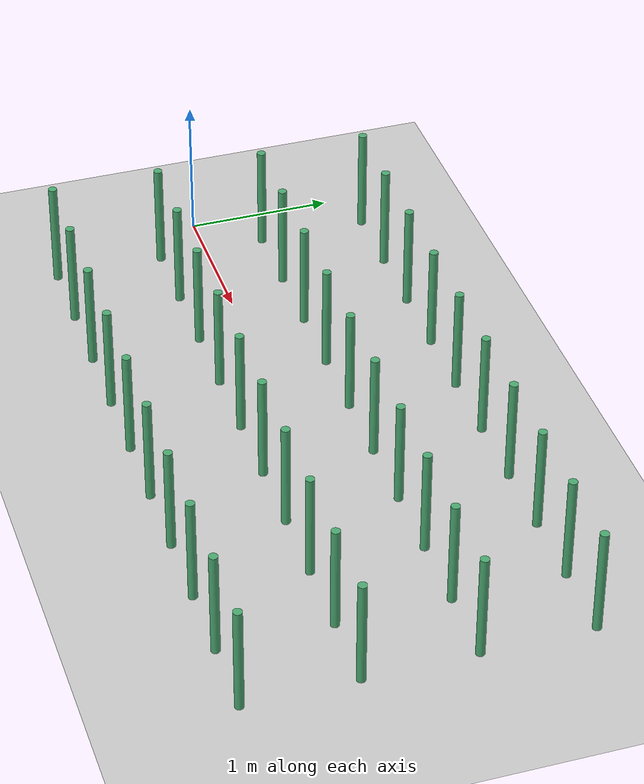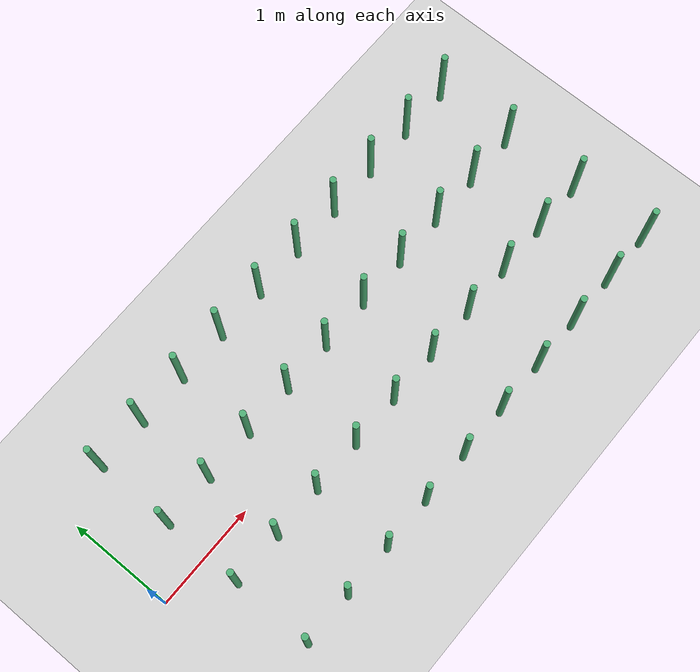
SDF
<sdf version="1.6">
 <world name="default">
  <model name="ground_plane">
   <static>1</static>
   <link name="link">
    <collision name="collision">
     <geometry><plane><normal>0 0 1</normal><size>100 100</size></plane></geometry>
     <surface>
      <contact><collide_bitmask>65535</collide_bitmask></contact>
      <friction><ode><mu>100</mu><mu2>50</mu2></ode></friction>
     </surface>
    </collision>
    <visual name="visual">
     <cast_shadows>0</cast_shadows>
     <geometry><plane><normal>0 0 1</normal><size>100 100</size></plane></geometry>
     <material>
      <script><uri>file://media/materials/scripts/gazebo.material</uri><name>Gazebo/Grey</name></script>
     </material>
    </visual>
   </link>
  </model>
  <model name="cylinder_0000">
   <pose>0.5 0.375 0.5 0 -0 0</pose>
   <link name="cylinder_0000_link">
    <inertial>
     <mass>5.0</mass>
     <inertia>
      <ixx>0.23550000000000001</ixx>
      <ixy>0</ixy>
      <ixz>0</ixz>
      <iyy>0.23550000000000001</iyy>
      <iyz>0</iyz>
      <izz>0.00225</izz>
     </inertia>
    </inertial>
    <collision name="collision">
     <geometry><cylinder><radius>0.03</radius><length>0.75</length></cylinder></geometry>
    </collision>
    <visual name="visual">
     <geometry><cylinder><radius>0.03</radius><length>0.75</length></cylinder></geometry>
     <material>
      <ambient>0.437790 0.985028 0.656685 1.0</ambient>
      <diffuse>0.297093 0.668460 0.445640 1.0</diffuse>
      <specular>0.000000 0.000000 0.000000 1.0</specular>
      <emissive>0.0 0.0 0.0 0.0</emissive>
     </material>
    </visual>
   </link>
  </model>
  <model name="cylinder_0001">
   <pose>0.5 1.125 0.5 0 -0 0</pose>
   <link name="cylinder_0001_link">
    <inertial>
     <mass>5.0</mass>
     <inertia>
      <ixx>0.23550000000000001</ixx>
      <ixy>0</ixy>
      <ixz>0</ixz>
      <iyy>0.23550000000000001</iyy>
      <iyz>0</iyz>
      <izz>0.00225</izz>
     </inertia>
    </inertial>
    <collision name="collision">
     <geometry><cylinder><radius>0.03</radius><length>0.75</length></cylinder></geometry>
    </collision>
    <visual name="visual">
     <geometry><cylinder><radius>0.03</radius><length>0.75</length></cylinder></geometry>
     <material>
      <ambient>0.437790 0.985028 0.656685 1.0</ambient>
      <diffuse>0.297093 0.668460 0.445640 1.0</diffuse>
      <specular>0.000000 0.000000 0.000000 1.0</specular>
      <emissive>0.0 0.0 0.0 0.0</emissive>
     </material>
    </visual>
   </link>
  </model>
  <model name="cylinder_0002">
   <pose>0.5 -0.375 0.5 0 -0 0</pose>
   <link name="cylinder_0002_link">
    <inertial>
     <mass>5.0</mass>
     <inertia>
      <ixx>0.23550000000000001</ixx>
      <ixy>0</ixy>
      <ixz>0</ixz>
      <iyy>0.23550000000000001</iyy>
      <iyz>0</iyz>
      <izz>0.00225</izz>
     </inertia>
    </inertial>
    <collision name="collision">
     <geometry><cylinder><radius>0.03</radius><length>0.75</length></cylinder></geometry>
    </collision>
    <visual name="visual">
     <geometry><cylinder><radius>0.03</radius><length>0.75</length></cylinder></geometry>
     <material>
      <ambient>0.437790 0.985028 0.656685 1.0</ambient>
      <diffuse>0.297093 0.668460 0.445640 1.0</diffuse>
      <specular>0.000000 0.000000 0.000000 1.0</specular>
      <emissive>0.0 0.0 0.0 0.0</emissive>
     </material>
    </visual>
   </link>
  </model>
  <model name="cylinder_0003">
   <pose>0.5 -1.125 0.5 0 -0 0</pose>
   <link name="cylinder_0003_link">
    <inertial>
     <mass>5.0</mass>
     <inertia>
      <ixx>0.23550000000000001</ixx>
      <ixy>0</ixy>
      <ixz>0</ixz>
      <iyy>0.23550000000000001</iyy>
      <iyz>0</iyz>
      <izz>0.00225</izz>
     </inertia>
    </inertial>
    <collision name="collision">
     <geometry><cylinder><radius>0.03</radius><length>0.75</length></cylinder></geometry>
    </collision>
    <visual name="visual">
     <geometry><cylinder><radius>0.03</radius><length>0.75</length></cylinder></geometry>
     <material>
      <ambient>0.437790 0.985028 0.656685 1.0</ambient>
      <diffuse>0.297093 0.668460 0.445640 1.0</diffuse>
      <specular>0.000000 0.000000 0.000000 1.0</specular>
      <emissive>0.0 0.0 0.0 0.0</emissive>
     </material>
    </visual>
   </link>
  </model>
  <model name="cylinder_0004">
   <pose>1.0 0.375 0.5 0 -0 0</pose>
   <link name="cylinder_0004_link">
    <inertial>
     <mass>5.0</mass>
     <inertia>
      <ixx>0.23550000000000001</ixx>
      <ixy>0</ixy>
      <ixz>0</ixz>
      <iyy>0.23550000000000001</iyy>
      <iyz>0</iyz>
      <izz>0.00225</izz>
     </inertia>
    </inertial>
    <collision name="collision">
     <geometry><cylinder><radius>0.03</radius><length>0.75</length></cylinder></geometry>
    </collision>
    <visual name="visual">
     <geometry><cylinder><radius>0.03</radius><length>0.75</length></cylinder></geometry>
     <material>
      <ambient>0.437790 0.985028 0.656685 1.0</ambient>
      <diffuse>0.297093 0.668460 0.445640 1.0</diffuse>
      <specular>0.000000 0.000000 0.000000 1.0</specular>
      <emissive>0.0 0.0 0.0 0.0</emissive>
     </material>
    </visual>
   </link>
  </model>
  <model name="cylinder_0005">
   <pose>1.0 1.125 0.5 0 -0 0</pose>
   <link name="cylinder_0005_link">
    <inertial>
     <mass>5.0</mass>
     <inertia>
      <ixx>0.23550000000000001</ixx>
      <ixy>0</ixy>
      <ixz>0</ixz>
      <iyy>0.23550000000000001</iyy>
      <iyz>0</iyz>
      <izz>0.00225</izz>
     </inertia>
    </inertial>
    <collision name="collision">
     <geometry><cylinder><radius>0.03</radius><length>0.75</length></cylinder></geometry>
    </collision>
    <visual name="visual">
     <geometry><cylinder><radius>0.03</radius><length>0.75</length></cylinder></geometry>
     <material>
      <ambient>0.437790 0.985028 0.656685 1.0</ambient>
      <diffuse>0.297093 0.668460 0.445640 1.0</diffuse>
      <specular>0.000000 0.000000 0.000000 1.0</specular>
      <emissive>0.0 0.0 0.0 0.0</emissive>
     </material>
    </visual>
   </link>
  </model>
  <model name="cylinder_0006">
   <pose>1.0 -0.375 0.5 0 -0 0</pose>
   <link name="cylinder_0006_link">
    <inertial>
     <mass>5.0</mass>
     <inertia>
      <ixx>0.23550000000000001</ixx>
      <ixy>0</ixy>
      <ixz>0</ixz>
      <iyy>0.23550000000000001</iyy>
      <iyz>0</iyz>
      <izz>0.00225</izz>
     </inertia>
    </inertial>
    <collision name="collision">
     <geometry><cylinder><radius>0.03</radius><length>0.75</length></cylinder></geometry>
    </collision>
    <visual name="visual">
     <geometry><cylinder><radius>0.03</radius><length>0.75</length></cylinder></geometry>
     <material>
      <ambient>0.437790 0.985028 0.656685 1.0</ambient>
      <diffuse>0.297093 0.668460 0.445640 1.0</diffuse>
      <specular>0.000000 0.000000 0.000000 1.0</specular>
      <emissive>0.0 0.0 0.0 0.0</emissive>
     </material>
    </visual>
   </link>
  </model>
  <model name="cylinder_0007">
   <pose>1.0 -1.125 0.5 0 -0 0</pose>
   <link name="cylinder_0007_link">
    <inertial>
     <mass>5.0</mass>
     <inertia>
      <ixx>0.23550000000000001</ixx>
      <ixy>0</ixy>
      <ixz>0</ixz>
      <iyy>0.23550000000000001</iyy>
      <iyz>0</iyz>
      <izz>0.00225</izz>
     </inertia>
    </inertial>
    <collision name="collision">
     <geometry><cylinder><radius>0.03</radius><length>0.75</length></cylinder></geometry>
    </collision>
    <visual name="visual">
     <geometry><cylinder><radius>0.03</radius><length>0.75</length></cylinder></geometry>
     <material>
      <ambient>0.437790 0.985028 0.656685 1.0</ambient>
      <diffuse>0.297093 0.668460 0.445640 1.0</diffuse>
      <specular>0.000000 0.000000 0.000000 1.0</specular>
      <emissive>0.0 0.0 0.0 0.0</emissive>
     </material>
    </visual>
   </link>
  </model>
  <model name="cylinder_0008">
   <pose>1.5 0.375 0.5 0 -0 0</pose>
   <link name="cylinder_0008_link">
    <inertial>
     <mass>5.0</mass>
     <inertia>
      <ixx>0.23550000000000001</ixx>
      <ixy>0</ixy>
      <ixz>0</ixz>
      <iyy>0.23550000000000001</iyy>
      <iyz>0</iyz>
      <izz>0.00225</izz>
     </inertia>
    </inertial>
    <collision name="collision">
     <geometry><cylinder><radius>0.03</radius><length>0.75</length></cylinder></geometry>
    </collision>
    <visual name="visual">
     <geometry><cylinder><radius>0.03</radius><length>0.75</length></cylinder></geometry>
     <material>
      <ambient>0.437790 0.985028 0.656685 1.0</ambient>
      <diffuse>0.297093 0.668460 0.445640 1.0</diffuse>
      <specular>0.000000 0.000000 0.000000 1.0</specular>
      <emissive>0.0 0.0 0.0 0.0</emissive>
     </material>
    </visual>
   </link>
  </model>
  <model name="cylinder_0009">
   <pose>1.5 1.125 0.5 0 -0 0</pose>
   <link name="cylinder_0009_link">
    <inertial>
     <mass>5.0</mass>
     <inertia>
      <ixx>0.23550000000000001</ixx>
      <ixy>0</ixy>
      <ixz>0</ixz>
      <iyy>0.23550000000000001</iyy>
      <iyz>0</iyz>
      <izz>0.00225</izz>
     </inertia>
    </inertial>
    <collision name="collision">
     <geometry><cylinder><radius>0.03</radius><length>0.75</length></cylinder></geometry>
    </collision>
    <visual name="visual">
     <geometry><cylinder><radius>0.03</radius><length>0.75</length></cylinder></geometry>
     <material>
      <ambient>0.437790 0.985028 0.656685 1.0</ambient>
      <diffuse>0.297093 0.668460 0.445640 1.0</diffuse>
      <specular>0.000000 0.000000 0.000000 1.0</specular>
      <emissive>0.0 0.0 0.0 0.0</emissive>
     </material>
    </visual>
   </link>
  </model>
  <model name="cylinder_0010">
   <pose>1.5 -0.375 0.5 0 -0 0</pose>
   <link name="cylinder_0010_link">
    <inertial>
     <mass>5.0</mass>
     <inertia>
      <ixx>0.23550000000000001</ixx>
      <ixy>0</ixy>
      <ixz>0</ixz>
      <iyy>0.23550000000000001</iyy>
      <iyz>0</iyz>
      <izz>0.00225</izz>
     </inertia>
    </inertial>
    <collision name="collision">
     <geometry><cylinder><radius>0.03</radius><length>0.75</length></cylinder></geometry>
    </collision>
    <visual name="visual">
     <geometry><cylinder><radius>0.03</radius><length>0.75</length></cylinder></geometry>
     <material>
      <ambient>0.437790 0.985028 0.656685 1.0</ambient>
      <diffuse>0.297093 0.668460 0.445640 1.0</diffuse>
      <specular>0.000000 0.000000 0.000000 1.0</specular>
      <emissive>0.0 0.0 0.0 0.0</emissive>
     </material>
    </visual>
   </link>
  </model>
  <model name="cylinder_0011">
   <pose>1.5 -1.125 0.5 0 -0 0</pose>
   <link name="cylinder_0011_link">
    <inertial>
     <mass>5.0</mass>
     <inertia>
      <ixx>0.23550000000000001</ixx>
      <ixy>0</ixy>
      <ixz>0</ixz>
      <iyy>0.23550000000000001</iyy>
      <iyz>0</iyz>
      <izz>0.00225</izz>
     </inertia>
    </inertial>
    <collision name="collision">
     <geometry><cylinder><radius>0.03</radius><length>0.75</length></cylinder></geometry>
    </collision>
    <visual name="visual">
     <geometry><cylinder><radius>0.03</radius><length>0.75</length></cylinder></geometry>
     <material>
      <ambient>0.437790 0.985028 0.656685 1.0</ambient>
      <diffuse>0.297093 0.668460 0.445640 1.0</diffuse>
      <specular>0.000000 0.000000 0.000000 1.0</specular>
      <emissive>0.0 0.0 0.0 0.0</emissive>
     </material>
    </visual>
   </link>
  </model>
  <model name="cylinder_0012">
   <pose>2.0 0.375 0.5 0 -0 0</pose>
   <link name="cylinder_0012_link">
    <inertial>
     <mass>5.0</mass>
     <inertia>
      <ixx>0.23550000000000001</ixx>
      <ixy>0</ixy>
      <ixz>0</ixz>
      <iyy>0.23550000000000001</iyy>
      <iyz>0</iyz>
      <izz>0.00225</izz>
     </inertia>
    </inertial>
    <collision name="collision">
     <geometry><cylinder><radius>0.03</radius><length>0.75</length></cylinder></geometry>
    </collision>
    <visual name="visual">
     <geometry><cylinder><radius>0.03</radius><length>0.75</length></cylinder></geometry>
     <material>
      <ambient>0.437790 0.985028 0.656685 1.0</ambient>
      <diffuse>0.297093 0.668460 0.445640 1.0</diffuse>
      <specular>0.000000 0.000000 0.000000 1.0</specular>
      <emissive>0.0 0.0 0.0 0.0</emissive>
     </material>
    </visual>
   </link>
  </model>
  <model name="cylinder_0013">
   <pose>2.0 1.125 0.5 0 -0 0</pose>
   <link name="cylinder_0013_link">
    <inertial>
     <mass>5.0</mass>
     <inertia>
      <ixx>0.23550000000000001</ixx>
      <ixy>0</ixy>
      <ixz>0</ixz>
      <iyy>0.23550000000000001</iyy>
      <iyz>0</iyz>
      <izz>0.00225</izz>
     </inertia>
    </inertial>
    <collision name="collision">
     <geometry><cylinder><radius>0.03</radius><length>0.75</length></cylinder></geometry>
    </collision>
    <visual name="visual">
     <geometry><cylinder><radius>0.03</radius><length>0.75</length></cylinder></geometry>
     <material>
      <ambient>0.437790 0.985028 0.656685 1.0</ambient>
      <diffuse>0.297093 0.668460 0.445640 1.0</diffuse>
      <specular>0.000000 0.000000 0.000000 1.0</specular>
      <emissive>0.0 0.0 0.0 0.0</emissive>
     </material>
    </visual>
   </link>
  </model>
  <model name="cylinder_0014">
   <pose>2.0 -0.375 0.5 0 -0 0</pose>
   <link name="cylinder_0014_link">
    <inertial>
     <mass>5.0</mass>
     <inertia>
      <ixx>0.23550000000000001</ixx>
      <ixy>0</ixy>
      <ixz>0</ixz>
      <iyy>0.23550000000000001</iyy>
      <iyz>0</iyz>
      <izz>0.00225</izz>
     </inertia>
    </inertial>
    <collision name="collision">
     <geometry><cylinder><radius>0.03</radius><length>0.75</length></cylinder></geometry>
    </collision>
    <visual name="visual">
     <geometry><cylinder><radius>0.03</radius><length>0.75</length></cylinder></geometry>
     <material>
      <ambient>0.437790 0.985028 0.656685 1.0</ambient>
      <diffuse>0.297093 0.668460 0.445640 1.0</diffuse>
      <specular>0.000000 0.000000 0.000000 1.0</specular>
      <emissive>0.0 0.0 0.0 0.0</emissive>
     </material>
    </visual>
   </link>
  </model>
  <model name="cylinder_0015">
   <pose>2.0 -1.125 0.5 0 -0 0</pose>
   <link name="cylinder_0015_link">
    <inertial>
     <mass>5.0</mass>
     <inertia>
      <ixx>0.23550000000000001</ixx>
      <ixy>0</ixy>
      <ixz>0</ixz>
      <iyy>0.23550000000000001</iyy>
      <iyz>0</iyz>
      <izz>0.00225</izz>
     </inertia>
    </inertial>
    <collision name="collision">
     <geometry><cylinder><radius>0.03</radius><length>0.75</length></cylinder></geometry>
    </collision>
    <visual name="visual">
     <geometry><cylinder><radius>0.03</radius><length>0.75</length></cylinder></geometry>
     <material>
      <ambient>0.437790 0.985028 0.656685 1.0</ambient>
      <diffuse>0.297093 0.668460 0.445640 1.0</diffuse>
      <specular>0.000000 0.000000 0.000000 1.0</specular>
      <emissive>0.0 0.0 0.0 0.0</emissive>
     </material>
    </visual>
   </link>
  </model>
  <model name="cylinder_0016">
   <pose>2.5 0.375 0.5 0 -0 0</pose>
   <link name="cylinder_0016_link">
    <inertial>
     <mass>5.0</mass>
     <inertia>
      <ixx>0.23550000000000001</ixx>
      <ixy>0</ixy>
      <ixz>0</ixz>
      <iyy>0.23550000000000001</iyy>
      <iyz>0</iyz>
      <izz>0.00225</izz>
     </inertia>
    </inertial>
    <collision name="collision">
     <geometry><cylinder><radius>0.03</radius><length>0.75</length></cylinder></geometry>
    </collision>
    <visual name="visual">
     <geometry><cylinder><radius>0.03</radius><length>0.75</length></cylinder></geometry>
     <material>
      <ambient>0.437790 0.985028 0.656685 1.0</ambient>
      <diffuse>0.297093 0.668460 0.445640 1.0</diffuse>
      <specular>0.000000 0.000000 0.000000 1.0</specular>
      <emissive>0.0 0.0 0.0 0.0</emissive>
     </material>
    </visual>
   </link>
  </model>
  <model name="cylinder_0017">
   <pose>2.5 1.125 0.5 0 -0 0</pose>
   <link name="cylinder_0017_link">
    <inertial>
     <mass>5.0</mass>
     <inertia>
      <ixx>0.23550000000000001</ixx>
      <ixy>0</ixy>
      <ixz>0</ixz>
      <iyy>0.23550000000000001</iyy>
      <iyz>0</iyz>
      <izz>0.00225</izz>
     </inertia>
    </inertial>
    <collision name="collision">
     <geometry><cylinder><radius>0.03</radius><length>0.75</length></cylinder></geometry>
    </collision>
    <visual name="visual">
     <geometry><cylinder><radius>0.03</radius><length>0.75</length></cylinder></geometry>
     <material>
      <ambient>0.437790 0.985028 0.656685 1.0</ambient>
      <diffuse>0.297093 0.668460 0.445640 1.0</diffuse>
      <specular>0.000000 0.000000 0.000000 1.0</specular>
      <emissive>0.0 0.0 0.0 0.0</emissive>
     </material>
    </visual>
   </link>
  </model>
  <model name="cylinder_0018">
   <pose>2.5 -0.375 0.5 0 -0 0</pose>
   <link name="cylinder_0018_link">
    <inertial>
     <mass>5.0</mass>
     <inertia>
      <ixx>0.23550000000000001</ixx>
      <ixy>0</ixy>
      <ixz>0</ixz>
      <iyy>0.23550000000000001</iyy>
      <iyz>0</iyz>
      <izz>0.00225</izz>
     </inertia>
    </inertial>
    <collision name="collision">
     <geometry><cylinder><radius>0.03</radius><length>0.75</length></cylinder></geometry>
    </collision>
    <visual name="visual">
     <geometry><cylinder><radius>0.03</radius><length>0.75</length></cylinder></geometry>
     <material>
      <ambient>0.437790 0.985028 0.656685 1.0</ambient>
      <diffuse>0.297093 0.668460 0.445640 1.0</diffuse>
      <specular>0.000000 0.000000 0.000000 1.0</specular>
      <emissive>0.0 0.0 0.0 0.0</emissive>
     </material>
    </visual>
   </link>
  </model>
  <model name="cylinder_0019">
   <pose>2.5 -1.125 0.5 0 -0 0</pose>
   <link name="cylinder_0019_link">
    <inertial>
     <mass>5.0</mass>
     <inertia>
      <ixx>0.23550000000000001</ixx>
      <ixy>0</ixy>
      <ixz>0</ixz>
      <iyy>0.23550000000000001</iyy>
      <iyz>0</iyz>
      <izz>0.00225</izz>
     </inertia>
    </inertial>
    <collision name="collision">
     <geometry><cylinder><radius>0.03</radius><length>0.75</length></cylinder></geometry>
    </collision>
    <visual name="visual">
     <geometry><cylinder><radius>0.03</radius><length>0.75</length></cylinder></geometry>
     <material>
      <ambient>0.437790 0.985028 0.656685 1.0</ambient>
      <diffuse>0.297093 0.668460 0.445640 1.0</diffuse>
      <specular>0.000000 0.000000 0.000000 1.0</specular>
      <emissive>0.0 0.0 0.0 0.0</emissive>
     </material>
    </visual>
   </link>
  </model>
  <model name="cylinder_0020">
   <pose>3.0 0.375 0.5 0 -0 0</pose>
   <link name="cylinder_0020_link">
    <inertial>
     <mass>5.0</mass>
     <inertia>
      <ixx>0.23550000000000001</ixx>
      <ixy>0</ixy>
      <ixz>0</ixz>
      <iyy>0.23550000000000001</iyy>
      <iyz>0</iyz>
      <izz>0.00225</izz>
     </inertia>
    </inertial>
    <collision name="collision">
     <geometry><cylinder><radius>0.03</radius><length>0.75</length></cylinder></geometry>
    </collision>
    <visual name="visual">
     <geometry><cylinder><radius>0.03</radius><length>0.75</length></cylinder></geometry>
     <material>
      <ambient>0.437790 0.985028 0.656685 1.0</ambient>
      <diffuse>0.297093 0.668460 0.445640 1.0</diffuse>
      <specular>0.000000 0.000000 0.000000 1.0</specular>
      <emissive>0.0 0.0 0.0 0.0</emissive>
     </material>
    </visual>
   </link>
  </model>
  <model name="cylinder_0021">
   <pose>3.0 1.125 0.5 0 -0 0</pose>
   <link name="cylinder_0021_link">
    <inertial>
     <mass>5.0</mass>
     <inertia>
      <ixx>0.23550000000000001</ixx>
      <ixy>0</ixy>
      <ixz>0</ixz>
      <iyy>0.23550000000000001</iyy>
      <iyz>0</iyz>
      <izz>0.00225</izz>
     </inertia>
    </inertial>
    <collision name="collision">
     <geometry><cylinder><radius>0.03</radius><length>0.75</length></cylinder></geometry>
    </collision>
    <visual name="visual">
     <geometry><cylinder><radius>0.03</radius><length>0.75</length></cylinder></geometry>
     <material>
      <ambient>0.437790 0.985028 0.656685 1.0</ambient>
      <diffuse>0.297093 0.668460 0.445640 1.0</diffuse>
      <specular>0.000000 0.000000 0.000000 1.0</specular>
      <emissive>0.0 0.0 0.0 0.0</emissive>
     </material>
    </visual>
   </link>
  </model>
  <model name="cylinder_0022">
   <pose>3.0 -0.375 0.5 0 -0 0</pose>
   <link name="cylinder_0022_link">
    <inertial>
     <mass>5.0</mass>
     <inertia>
      <ixx>0.23550000000000001</ixx>
      <ixy>0</ixy>
      <ixz>0</ixz>
      <iyy>0.23550000000000001</iyy>
      <iyz>0</iyz>
      <izz>0.00225</izz>
     </inertia>
    </inertial>
    <collision name="collision">
     <geometry><cylinder><radius>0.03</radius><length>0.75</length></cylinder></geometry>
    </collision>
    <visual name="visual">
     <geometry><cylinder><radius>0.03</radius><length>0.75</length></cylinder></geometry>
     <material>
      <ambient>0.437790 0.985028 0.656685 1.0</ambient>
      <diffuse>0.297093 0.668460 0.445640 1.0</diffuse>
      <specular>0.000000 0.000000 0.000000 1.0</specular>
      <emissive>0.0 0.0 0.0 0.0</emissive>
     </material>
    </visual>
   </link>
  </model>
  <model name="cylinder_0023">
   <pose>3.0 -1.125 0.5 0 -0 0</pose>
   <link name="cylinder_0023_link">
    <inertial>
     <mass>5.0</mass>
     <inertia>
      <ixx>0.23550000000000001</ixx>
      <ixy>0</ixy>
      <ixz>0</ixz>
      <iyy>0.23550000000000001</iyy>
      <iyz>0</iyz>
      <izz>0.00225</izz>
     </inertia>
    </inertial>
    <collision name="collision">
     <geometry><cylinder><radius>0.03</radius><length>0.75</length></cylinder></geometry>
    </collision>
    <visual name="visual">
     <geometry><cylinder><radius>0.03</radius><length>0.75</length></cylinder></geometry>
     <material>
      <ambient>0.437790 0.985028 0.656685 1.0</ambient>
      <diffuse>0.297093 0.668460 0.445640 1.0</diffuse>
      <specular>0.000000 0.000000 0.000000 1.0</specular>
      <emissive>0.0 0.0 0.0 0.0</emissive>
     </material>
    </visual>
   </link>
  </model>
  <model name="cylinder_0024">
   <pose>3.5 0.375 0.5 0 -0 0</pose>
   <link name="cylinder_0024_link">
    <inertial>
     <mass>5.0</mass>
     <inertia>
      <ixx>0.23550000000000001</ixx>
      <ixy>0</ixy>
      <ixz>0</ixz>
      <iyy>0.23550000000000001</iyy>
      <iyz>0</iyz>
      <izz>0.00225</izz>
     </inertia>
    </inertial>
    <collision name="collision">
     <geometry><cylinder><radius>0.03</radius><length>0.75</length></cylinder></geometry>
    </collision>
    <visual name="visual">
     <geometry><cylinder><radius>0.03</radius><length>0.75</length></cylinder></geometry>
     <material>
      <ambient>0.437790 0.985028 0.656685 1.0</ambient>
      <diffuse>0.297093 0.668460 0.445640 1.0</diffuse>
      <specular>0.000000 0.000000 0.000000 1.0</specular>
      <emissive>0.0 0.0 0.0 0.0</emissive>
     </material>
    </visual>
   </link>
  </model>
  <model name="cylinder_0025">
   <pose>3.5 1.125 0.5 0 -0 0</pose>
   <link name="cylinder_0025_link">
    <inertial>
     <mass>5.0</mass>
     <inertia>
      <ixx>0.23550000000000001</ixx>
      <ixy>0</ixy>
      <ixz>0</ixz>
      <iyy>0.23550000000000001</iyy>
      <iyz>0</iyz>
      <izz>0.00225</izz>
     </inertia>
    </inertial>
    <collision name="collision">
     <geometry><cylinder><radius>0.03</radius><length>0.75</length></cylinder></geometry>
    </collision>
    <visual name="visual">
     <geometry><cylinder><radius>0.03</radius><length>0.75</length></cylinder></geometry>
     <material>
      <ambient>0.437790 0.985028 0.656685 1.0</ambient>
      <diffuse>0.297093 0.668460 0.445640 1.0</diffuse>
      <specular>0.000000 0.000000 0.000000 1.0</specular>
      <emissive>0.0 0.0 0.0 0.0</emissive>
     </material>
    </visual>
   </link>
  </model>
  <model name="cylinder_0026">
   <pose>3.5 -0.375 0.5 0 -0 0</pose>
   <link name="cylinder_0026_link">
    <inertial>
     <mass>5.0</mass>
     <inertia>
      <ixx>0.23550000000000001</ixx>
      <ixy>0</ixy>
      <ixz>0</ixz>
      <iyy>0.23550000000000001</iyy>
      <iyz>0</iyz>
      <izz>0.00225</izz>
     </inertia>
    </inertial>
    <collision name="collision">
     <geometry><cylinder><radius>0.03</radius><length>0.75</length></cylinder></geometry>
    </collision>
    <visual name="visual">
     <geometry><cylinder><radius>0.03</radius><length>0.75</length></cylinder></geometry>
     <material>
      <ambient>0.437790 0.985028 0.656685 1.0</ambient>
      <diffuse>0.297093 0.668460 0.445640 1.0</diffuse>
      <specular>0.000000 0.000000 0.000000 1.0</specular>
      <emissive>0.0 0.0 0.0 0.0</emissive>
     </material>
    </visual>
   </link>
  </model>
  <model name="cylinder_0027">
   <pose>3.5 -1.125 0.5 0 -0 0</pose>
   <link name="cylinder_0027_link">
    <inertial>
     <mass>5.0</mass>
     <inertia>
      <ixx>0.23550000000000001</ixx>
      <ixy>0</ixy>
      <ixz>0</ixz>
      <iyy>0.23550000000000001</iyy>
      <iyz>0</iyz>
      <izz>0.00225</izz>
     </inertia>
    </inertial>
    <collision name="collision">
     <geometry><cylinder><radius>0.03</radius><length>0.75</length></cylinder></geometry>
    </collision>
    <visual name="visual">
     <geometry><cylinder><radius>0.03</radius><length>0.75</length></cylinder></geometry>
     <material>
      <ambient>0.437790 0.985028 0.656685 1.0</ambient>
      <diffuse>0.297093 0.668460 0.445640 1.0</diffuse>
      <specular>0.000000 0.000000 0.000000 1.0</specular>
      <emissive>0.0 0.0 0.0 0.0</emissive>
     </material>
    </visual>
   </link>
  </model>
  <model name="cylinder_0028">
   <pose>4.0 0.375 0.5 0 -0 0</pose>
   <link name="cylinder_0028_link">
    <inertial>
     <mass>5.0</mass>
     <inertia>
      <ixx>0.23550000000000001</ixx>
      <ixy>0</ixy>
      <ixz>0</ixz>
      <iyy>0.23550000000000001</iyy>
      <iyz>0</iyz>
      <izz>0.00225</izz>
     </inertia>
    </inertial>
    <collision name="collision">
     <geometry><cylinder><radius>0.03</radius><length>0.75</length></cylinder></geometry>
    </collision>
    <visual name="visual">
     <geometry><cylinder><radius>0.03</radius><length>0.75</length></cylinder></geometry>
     <material>
      <ambient>0.437790 0.985028 0.656685 1.0</ambient>
      <diffuse>0.297093 0.668460 0.445640 1.0</diffuse>
      <specular>0.000000 0.000000 0.000000 1.0</specular>
      <emissive>0.0 0.0 0.0 0.0</emissive>
     </material>
    </visual>
   </link>
  </model>
  <model name="cylinder_0029">
   <pose>4.0 1.125 0.5 0 -0 0</pose>
   <link name="cylinder_0029_link">
    <inertial>
     <mass>5.0</mass>
     <inertia>
      <ixx>0.23550000000000001</ixx>
      <ixy>0</ixy>
      <ixz>0</ixz>
      <iyy>0.23550000000000001</iyy>
      <iyz>0</iyz>
      <izz>0.00225</izz>
     </inertia>
    </inertial>
    <collision name="collision">
     <geometry><cylinder><radius>0.03</radius><length>0.75</length></cylinder></geometry>
    </collision>
    <visual name="visual">
     <geometry><cylinder><radius>0.03</radius><length>0.75</length></cylinder></geometry>
     <material>
      <ambient>0.437790 0.985028 0.656685 1.0</ambient>
      <diffuse>0.297093 0.668460 0.445640 1.0</diffuse>
      <specular>0.000000 0.000000 0.000000 1.0</specular>
      <emissive>0.0 0.0 0.0 0.0</emissive>
     </material>
    </visual>
   </link>
  </model>
  <model name="cylinder_0030">
   <pose>4.0 -0.375 0.5 0 -0 0</pose>
   <link name="cylinder_0030_link">
    <inertial>
     <mass>5.0</mass>
     <inertia>
      <ixx>0.23550000000000001</ixx>
      <ixy>0</ixy>
      <ixz>0</ixz>
      <iyy>0.23550000000000001</iyy>
      <iyz>0</iyz>
      <izz>0.00225</izz>
     </inertia>
    </inertial>
    <collision name="collision">
     <geometry><cylinder><radius>0.03</radius><length>0.75</length></cylinder></geometry>
    </collision>
    <visual name="visual">
     <geometry><cylinder><radius>0.03</radius><length>0.75</length></cylinder></geometry>
     <material>
      <ambient>0.437790 0.985028 0.656685 1.0</ambient>
      <diffuse>0.297093 0.668460 0.445640 1.0</diffuse>
      <specular>0.000000 0.000000 0.000000 1.0</specular>
      <emissive>0.0 0.0 0.0 0.0</emissive>
     </material>
    </visual>
   </link>
  </model>
  <model name="cylinder_0031">
   <pose>4.0 -1.125 0.5 0 -0 0</pose>
   <link name="cylinder_0031_link">
    <inertial>
     <mass>5.0</mass>
     <inertia>
      <ixx>0.23550000000000001</ixx>
      <ixy>0</ixy>
      <ixz>0</ixz>
      <iyy>0.23550000000000001</iyy>
      <iyz>0</iyz>
      <izz>0.00225</izz>
     </inertia>
    </inertial>
    <collision name="collision">
     <geometry><cylinder><radius>0.03</radius><length>0.75</length></cylinder></geometry>
    </collision>
    <visual name="visual">
     <geometry><cylinder><radius>0.03</radius><length>0.75</length></cylinder></geometry>
     <material>
      <ambient>0.437790 0.985028 0.656685 1.0</ambient>
      <diffuse>0.297093 0.668460 0.445640 1.0</diffuse>
      <specular>0.000000 0.000000 0.000000 1.0</specular>
      <emissive>0.0 0.0 0.0 0.0</emissive>
     </material>
    </visual>
   </link>
  </model>
  <model name="cylinder_0032">
   <pose>4.5 0.375 0.5 0 -0 0</pose>
   <link name="cylinder_0032_link">
    <inertial>
     <mass>5.0</mass>
     <inertia>
      <ixx>0.23550000000000001</ixx>
      <ixy>0</ixy>
      <ixz>0</ixz>
      <iyy>0.23550000000000001</iyy>
      <iyz>0</iyz>
      <izz>0.00225</izz>
     </inertia>
    </inertial>
    <collision name="collision">
     <geometry><cylinder><radius>0.03</radius><length>0.75</length></cylinder></geometry>
    </collision>
    <visual name="visual">
     <geometry><cylinder><radius>0.03</radius><length>0.75</length></cylinder></geometry>
     <material>
      <ambient>0.437790 0.985028 0.656685 1.0</ambient>
      <diffuse>0.297093 0.668460 0.445640 1.0</diffuse>
      <specular>0.000000 0.000000 0.000000 1.0</specular>
      <emissive>0.0 0.0 0.0 0.0</emissive>
     </material>
    </visual>
   </link>
  </model>
  <model name="cylinder_0033">
   <pose>4.5 1.125 0.5 0 -0 0</pose>
   <link name="cylinder_0033_link">
    <inertial>
     <mass>5.0</mass>
     <inertia>
      <ixx>0.23550000000000001</ixx>
      <ixy>0</ixy>
      <ixz>0</ixz>
      <iyy>0.23550000000000001</iyy>
      <iyz>0</iyz>
      <izz>0.00225</izz>
     </inertia>
    </inertial>
    <collision name="collision">
     <geometry><cylinder><radius>0.03</radius><length>0.75</length></cylinder></geometry>
    </collision>
    <visual name="visual">
     <geometry><cylinder><radius>0.03</radius><length>0.75</length></cylinder></geometry>
     <material>
      <ambient>0.437790 0.985028 0.656685 1.0</ambient>
      <diffuse>0.297093 0.668460 0.445640 1.0</diffuse>
      <specular>0.000000 0.000000 0.000000 1.0</specular>
      <emissive>0.0 0.0 0.0 0.0</emissive>
     </material>
    </visual>
   </link>
  </model>
  <model name="cylinder_0034">
   <pose>4.5 -0.375 0.5 0 -0 0</pose>
   <link name="cylinder_0034_link">
    <inertial>
     <mass>5.0</mass>
     <inertia>
      <ixx>0.23550000000000001</ixx>
      <ixy>0</ixy>
      <ixz>0</ixz>
      <iyy>0.23550000000000001</iyy>
      <iyz>0</iyz>
      <izz>0.00225</izz>
     </inertia>
    </inertial>
    <collision name="collision">
     <geometry><cylinder><radius>0.03</radius><length>0.75</length></cylinder></geometry>
    </collision>
    <visual name="visual">
     <geometry><cylinder><radius>0.03</radius><length>0.75</length></cylinder></geometry>
     <material>
      <ambient>0.437790 0.985028 0.656685 1.0</ambient>
      <diffuse>0.297093 0.668460 0.445640 1.0</diffuse>
      <specular>0.000000 0.000000 0.000000 1.0</specular>
      <emissive>0.0 0.0 0.0 0.0</emissive>
     </material>
    </visual>
   </link>
  </model>
  <model name="cylinder_0035">
   <pose>4.5 -1.125 0.5 0 -0 0</pose>
   <link name="cylinder_0035_link">
    <inertial>
     <mass>5.0</mass>
     <inertia>
      <ixx>0.23550000000000001</ixx>
      <ixy>0</ixy>
      <ixz>0</ixz>
      <iyy>0.23550000000000001</iyy>
      <iyz>0</iyz>
      <izz>0.00225</izz>
     </inertia>
    </inertial>
    <collision name="collision">
     <geometry><cylinder><radius>0.03</radius><length>0.75</length></cylinder></geometry>
    </collision>
    <visual name="visual">
     <geometry><cylinder><radius>0.03</radius><length>0.75</length></cylinder></geometry>
     <material>
      <ambient>0.437790 0.985028 0.656685 1.0</ambient>
      <diffuse>0.297093 0.668460 0.445640 1.0</diffuse>
      <specular>0.000000 0.000000 0.000000 1.0</specular>
      <emissive>0.0 0.0 0.0 0.0</emissive>
     </material>
    </visual>
   </link>
  </model>
  <model name="cylinder_0036">
   <pose>5.0 0.375 0.5 0 -0 0</pose>
   <link name="cylinder_0036_link">
    <inertial>
     <mass>5.0</mass>
     <inertia>
      <ixx>0.23550000000000001</ixx>
      <ixy>0</ixy>
      <ixz>0</ixz>
      <iyy>0.23550000000000001</iyy>
      <iyz>0</iyz>
      <izz>0.00225</izz>
     </inertia>
    </inertial>
    <collision name="collision">
     <geometry><cylinder><radius>0.03</radius><length>0.75</length></cylinder></geometry>
    </collision>
    <visual name="visual">
     <geometry><cylinder><radius>0.03</radius><length>0.75</length></cylinder></geometry>
     <material>
      <ambient>0.437790 0.985028 0.656685 1.0</ambient>
      <diffuse>0.297093 0.668460 0.445640 1.0</diffuse>
      <specular>0.000000 0.000000 0.000000 1.0</specular>
      <emissive>0.0 0.0 0.0 0.0</emissive>
     </material>
    </visual>
   </link>
  </model>
  <model name="cylinder_0037">
   <pose>5.0 1.125 0.5 0 -0 0</pose>
   <link name="cylinder_0037_link">
    <inertial>
     <mass>5.0</mass>
     <inertia>
      <ixx>0.23550000000000001</ixx>
      <ixy>0</ixy>
      <ixz>0</ixz>
      <iyy>0.23550000000000001</iyy>
      <iyz>0</iyz>
      <izz>0.00225</izz>
     </inertia>
    </inertial>
    <collision name="collision">
     <geometry><cylinder><radius>0.03</radius><length>0.75</length></cylinder></geometry>
    </collision>
    <visual name="visual">
     <geometry><cylinder><radius>0.03</radius><length>0.75</length></cylinder></geometry>
     <material>
      <ambient>0.437790 0.985028 0.656685 1.0</ambient>
      <diffuse>0.297093 0.668460 0.445640 1.0</diffuse>
      <specular>0.000000 0.000000 0.000000 1.0</specular>
      <emissive>0.0 0.0 0.0 0.0</emissive>
     </material>
    </visual>
   </link>
  </model>
  <model name="cylinder_0038">
   <pose>5.0 -0.375 0.5 0 -0 0</pose>
   <link name="cylinder_0038_link">
    <inertial>
     <mass>5.0</mass>
     <inertia>
      <ixx>0.23550000000000001</ixx>
      <ixy>0</ixy>
      <ixz>0</ixz>
      <iyy>0.23550000000000001</iyy>
      <iyz>0</iyz>
      <izz>0.00225</izz>
     </inertia>
    </inertial>
    <collision name="collision">
     <geometry><cylinder><radius>0.03</radius><length>0.75</length></cylinder></geometry>
    </collision>
    <visual name="visual">
     <geometry><cylinder><radius>0.03</radius><length>0.75</length></cylinder></geometry>
     <material>
      <ambient>0.437790 0.985028 0.656685 1.0</ambient>
      <diffuse>0.297093 0.668460 0.445640 1.0</diffuse>
      <specular>0.000000 0.000000 0.000000 1.0</specular>
      <emissive>0.0 0.0 0.0 0.0</emissive>
     </material>
    </visual>
   </link>
  </model>
  <model name="cylinder_0039">
   <pose>5.0 -1.125 0.5 0 -0 0</pose>
   <link name="cylinder_0039_link">
    <inertial>
     <mass>5.0</mass>
     <inertia>
      <ixx>0.23550000000000001</ixx>
      <ixy>0</ixy>
      <ixz>0</ixz>
      <iyy>0.23550000000000001</iyy>
      <iyz>0</iyz>
      <izz>0.00225</izz>
     </inertia>
    </inertial>
    <collision name="collision">
     <geometry><cylinder><radius>0.03</radius><length>0.75</length></cylinder></geometry>
    </collision>
    <visual name="visual">
     <geometry><cylinder><radius>0.03</radius><length>0.75</length></cylinder></geometry>
     <material>
      <ambient>0.437790 0.985028 0.656685 1.0</ambient>
      <diffuse>0.297093 0.668460 0.445640 1.0</diffuse>
      <specular>0.000000 0.000000 0.000000 1.0</specular>
      <emissive>0.0 0.0 0.0 0.0</emissive>
     </material>
    </visual>
   </link>
  </model>
 </world>
</sdf>
